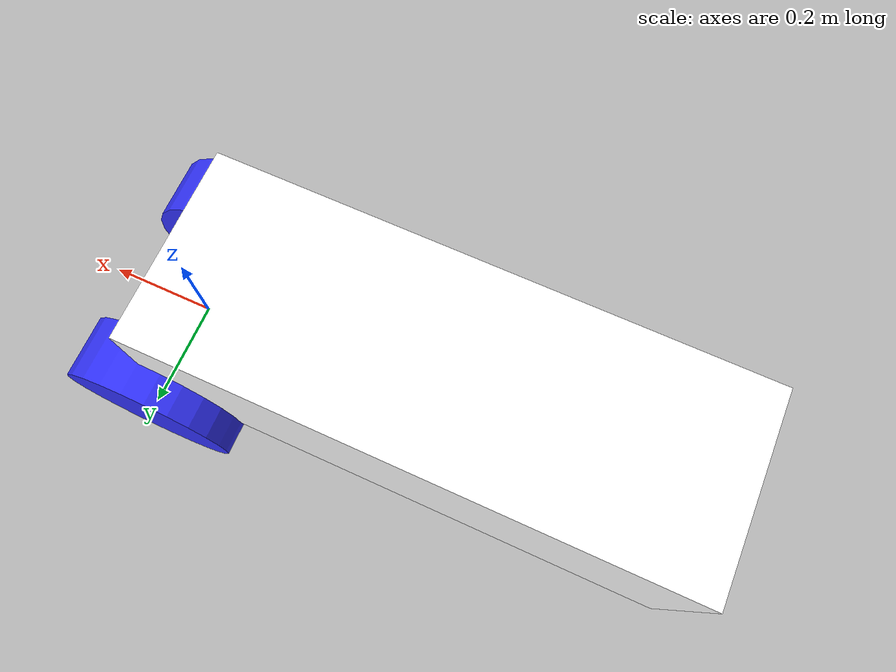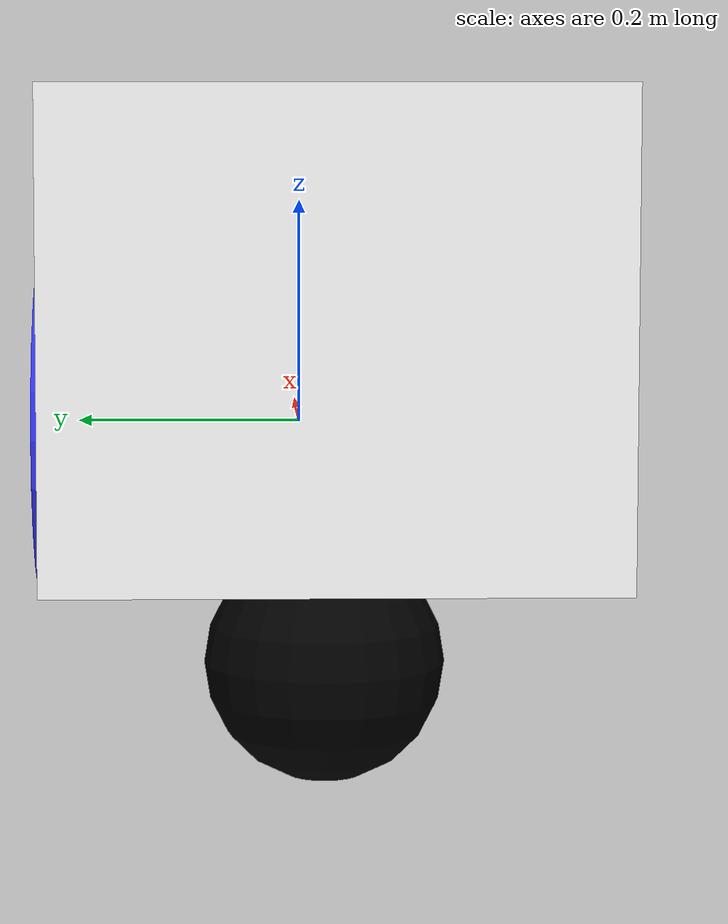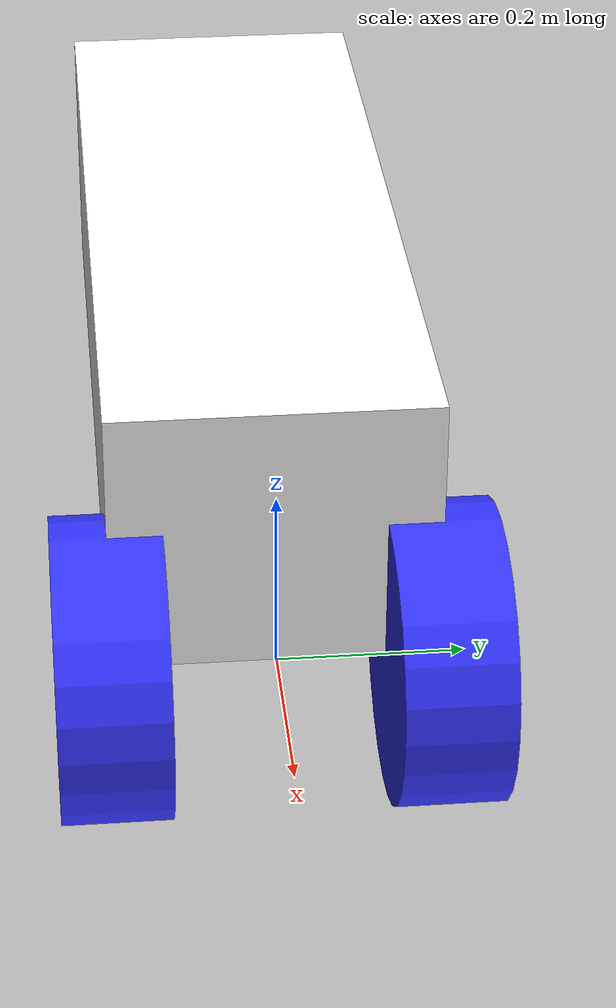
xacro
<?xml version="1.0"?>
<robot xmlns:xacro="http://www.ros.org/wiki/xacro" >

    <xacro:include filename="inertial_macros.xacro"/>

    <material name="white">
        <color rgba="1 1 1 1" />
    </material>

    <material name="orange">
        <color rgba="1 0.3 0.1 1"/>
    </material>

    <material name="blue">
        <color rgba="0.2 0.2 1 1"/>
    </material>

    <material name="black">
        <color rgba="0 0 0 1"/>
    </material>

    <material name="red">
        <color rgba="1 0 0 1"/>
    </material>

    <!-- BASE LINK -->

    <link name="base_link">

    </link>

    <!-- CHASSIS LINK -->

    <joint name="chassis_joint" type="fixed">
        <parent link="base_link"/>
        <child link="chassis"/>
        <origin xyz="-0.965423 0 0"/>    <!-- TODO: change "-0.1" to the distance from the center of two wheels to the back of the bot-->
    </joint>

    <link name="chassis">
        <visual>
            <origin xyz="0.4827115 0 0.15"/> <!-- TODO: change origin to half the box size (for now assume the bot is a rectangle box)-->
            <geometry>
                <box size="0.965423 0.35 0.30"/> <!-- size of the bot [width = 1m, length = 0.35m, height = 0.36m] -->
            </geometry>
            <material name="white"/>
        </visual>
        <collision>
            <origin xyz="0.15 0 0.075"/>
            <geometry>
                <box size="0.3 0.3 0.15"/>
            </geometry>
        </collision>
        <xacro:inertial_box mass="0.5" x="0.3" y="0.3" z="0.15"> <!-- TODO: change mass and size of robot -->
            <origin xyz="0.15 0 0.075" rpy="0 0 0"/>
        </xacro:inertial_box>
    </link>

    <gazebo reference="chassis">
        <material>Gazebo/White</material>
    </gazebo>

    <!-- LEFT WHEEL LINK -->

    <joint name="left_wheel_joint" type="continuous">
        <parent link="base_link"/>
        <child link="left_wheel"/>
        <origin xyz="0 0.175 0" rpy="-${pi/2} 0 0" /> <!-- TODO: change y offset to how far the wheel from the center -->
        <axis xyz="0 0 1"/>
    </joint>

    <link name="left_wheel">
        <visual>
            <geometry>
                <cylinder radius="0.1625" length="0.117"/> <!-- TODO: change size of the wheel's radius and its thickness -->
            </geometry>
            <material name="blue"/>
        </visual>
        <collision>
            <geometry>
                <cylinder radius="0.1625" length="0.117"/> <!-- TODO: change size of the wheel's radius and its thickness -->
            </geometry>
        </collision>
        <xacro:inertial_cylinder mass="0.1" length="0.1625" radius="0.117"> <!-- TODO: change weight and size of the wheel's radius and its thickness -->
            <origin xyz="0 0 0" rpy="0 0 0"/>
        </xacro:inertial_cylinder>
    </link>

    <gazebo reference="left_wheel">
        <material>Gazebo/Blue</material>
    </gazebo>

    <!-- RIGHT WHEEL LINK -->

    <joint name="right_wheel_joint" type="continuous">
        <parent link="base_link"/>
        <child link="right_wheel"/>
        <origin xyz="0 -0.175 0" rpy="${pi/2} 0 0" /> <!-- TODO: change y offset to how far the wheel from the center -->
        <axis xyz="0 0 -1"/>
    </joint>

    <link name="right_wheel">
        <visual>
            <geometry>
                <cylinder radius="0.1625" length="0.117"/> <!-- TODO: change size of the wheel's radius and its thickness -->
            </geometry>
            <material name="blue"/>
        </visual>
        <collision>
            <geometry>
                <cylinder radius="0.1625" length="0.117"/> <!-- TODO: change weight and size of the wheel's radius and its thickness -->
            </geometry>
        </collision>
        <xacro:inertial_cylinder mass="0.1" length="0.1625" radius="0.117">
            <origin xyz="0 0 0" rpy="0 0 0"/>
        </xacro:inertial_cylinder>
    </link>

    <gazebo reference="right_wheel">
        <material>Gazebo/Blue</material>
    </gazebo>

    <!-- CASTER WHEEL LINK -->

    <joint name="caster_wheel_joint" type="fixed">
        <parent link="chassis"/>
        <child link="caster_wheel"/>
        <origin xyz="0.24 0 -0.0825"/>
    </joint>

    <link name="caster_wheel">
        <visual>
            <geometry>
                <sphere radius="0.08"/> <!-- TODO: change caster wheel radius -->
            </geometry>
            <material name="black"/>
        </visual>
        <collision>
            <geometry>
                <sphere radius="0.08"/><!-- TODO: change caster wheel radius -->
            </geometry>
        </collision>
        <xacro:inertial_sphere mass="0.1" radius="0.08">
            <origin xyz="0 0 0" rpy="0 0 0"/>
        </xacro:inertial_sphere>
    </link>

    <gazebo reference="caster_wheel">
        <material>Gazebo/Black</material>
        <mu1 value="0.001"/>
        <mu2 value="0.001"/>
    </gazebo>

</robot>
